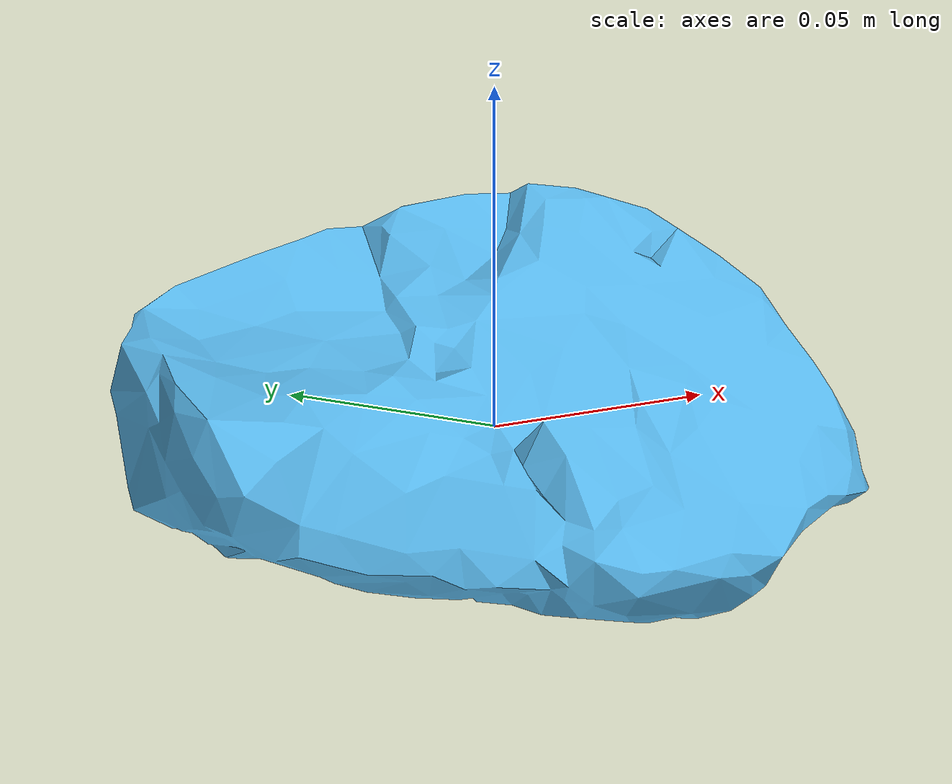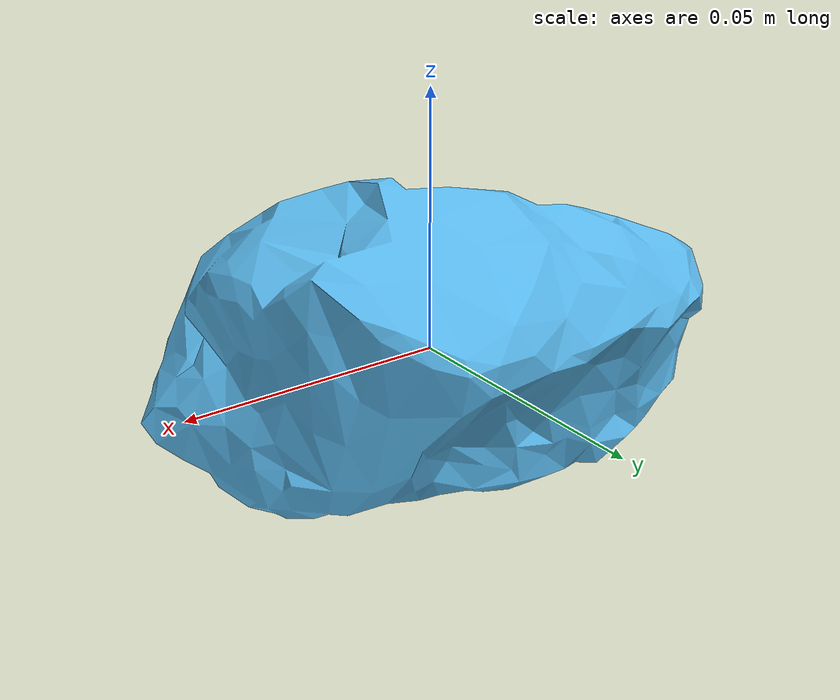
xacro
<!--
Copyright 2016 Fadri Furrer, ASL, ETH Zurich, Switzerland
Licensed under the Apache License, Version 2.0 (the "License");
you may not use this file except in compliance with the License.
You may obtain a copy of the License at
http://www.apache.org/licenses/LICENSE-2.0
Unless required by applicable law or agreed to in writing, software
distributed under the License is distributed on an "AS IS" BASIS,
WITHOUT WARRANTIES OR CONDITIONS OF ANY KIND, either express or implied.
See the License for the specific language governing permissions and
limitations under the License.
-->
<?xml version="1.0"?>

<robot name="stone_4" xmlns:xacro="http://ros.org/wiki/xacro">
  <xacro:property name="mesh_file" value="package://urdf_models/models/stone_4/mesh/stone_4.stl" />
  <xacro:property name="mass" value="1.0" />
  <link name="base_link"></link>

  <joint name="base_joint" type="fixed">
    <origin xyz="0 0 0" rpy="0 0 0" />
    <parent link="base_link" />
    <child link="base_link_inertia" />
  </joint>

  <link name="base_link_inertia">
    <inertial>
      <mass value="${mass}" />  <!-- [kg] -->
      <origin xyz="-0.000019e-1 0.000016e-1 -0.000054e-1" />
      <inertia ixx="0.007451e-02" ixy="0.002706e-02" ixz="0.000231e-02"
                                iyy="0.012215e-02"  iyz="-0.001176e-02"
                                                    izz="0.013797e-02" />
    </inertial>

    <visual>
      <origin xyz="0 0 0" rpy="0 0 0" />
      <geometry>
        <mesh filename="${mesh_file}" scale="1 1 1" />
      </geometry>
    </visual>

    <collision>
      <origin xyz="0 0 0" rpy="0 0 0" />
      <geometry>
        <mesh filename="${mesh_file}" scale="1 1 1" />
      </geometry>
    </collision>
  </link>

    <gazebo reference="base_link">
        <mu1 value="0.1"/>
        <mu2 value="0.1"/>
        <kp  value="5000000.0" />
        <kd  value="1.0" />
        <fdir1 value="1 0 0"/>
        <collision>
            <surface>
              <bounce>
                <restitution_coefficient> 0.1 </restitution_coefficient>
                <threshold>0.</threshold>
              </bounce>
            <contact>
                <ode>
                  <max_vel>10</max_vel>
                  <min_depth>0.001</min_depth>
                </ode>
            </contact>
            </surface>
       </collision>
        <material name="Gray">
        <color rgba="0.8 0.8 0.8 1"/>
      </material>
        <turnGravityOff>false</turnGravityOff>
    </gazebo>

</robot>
